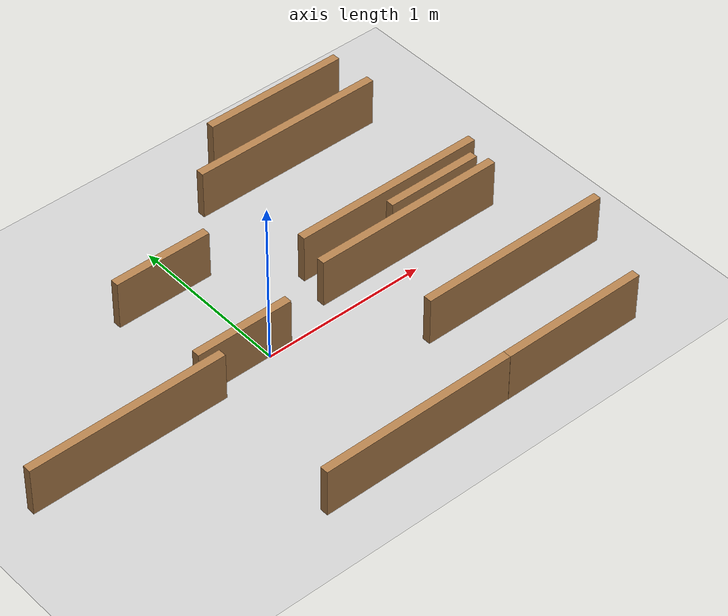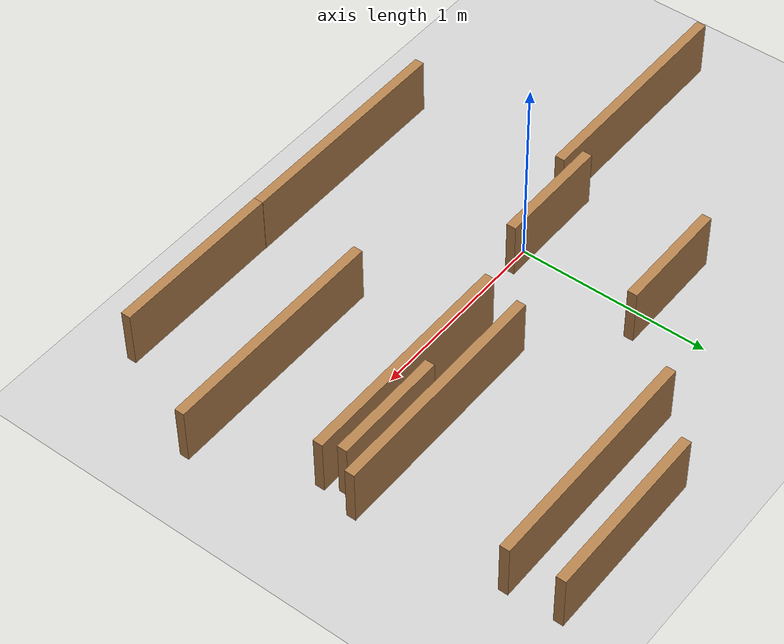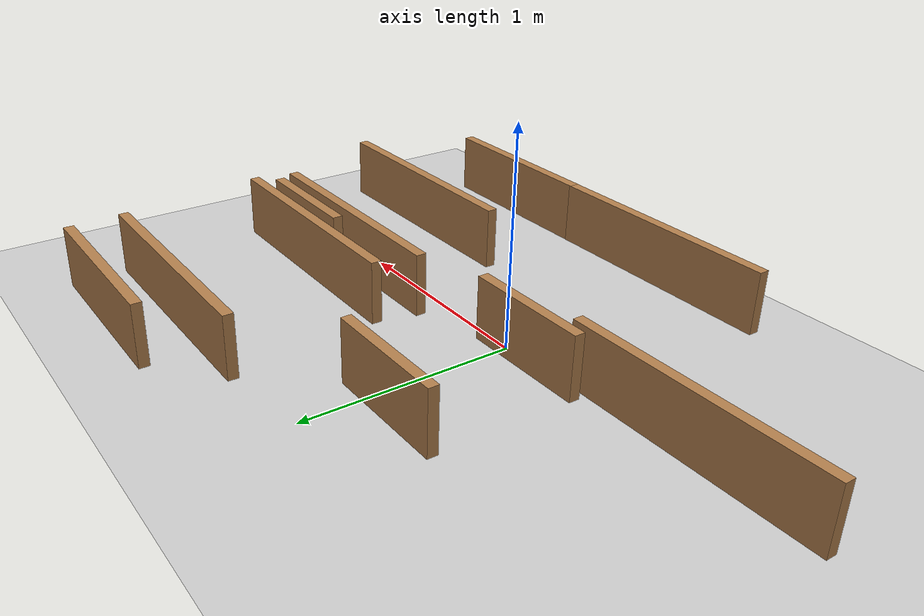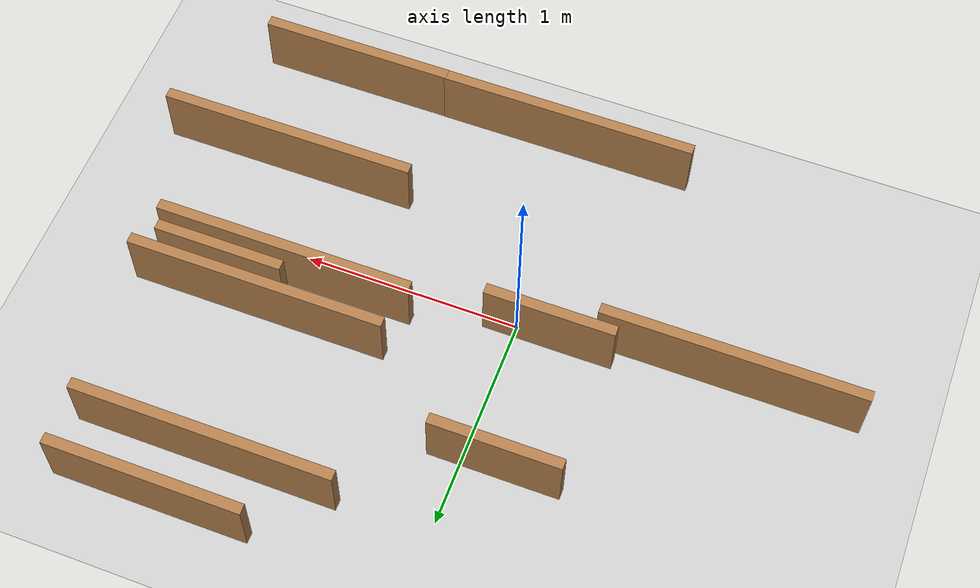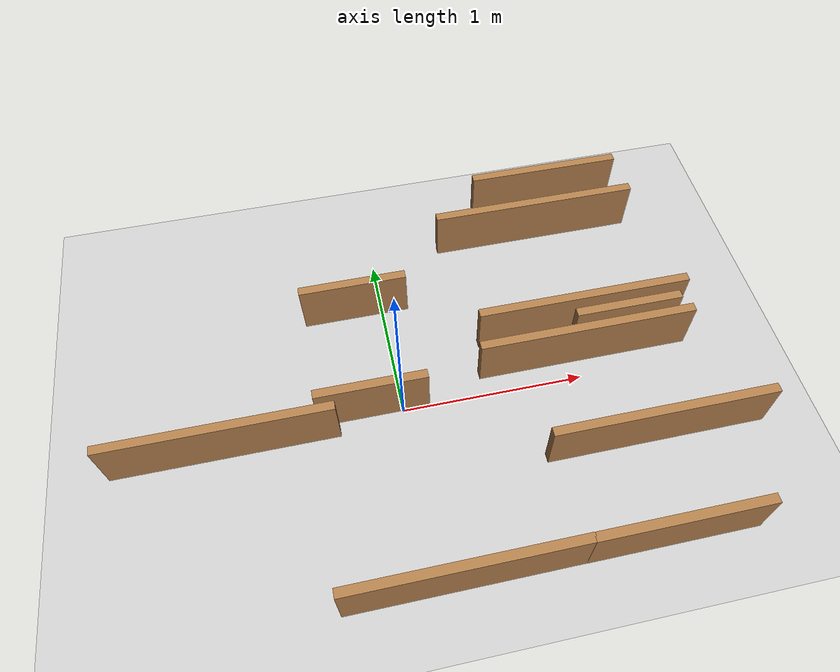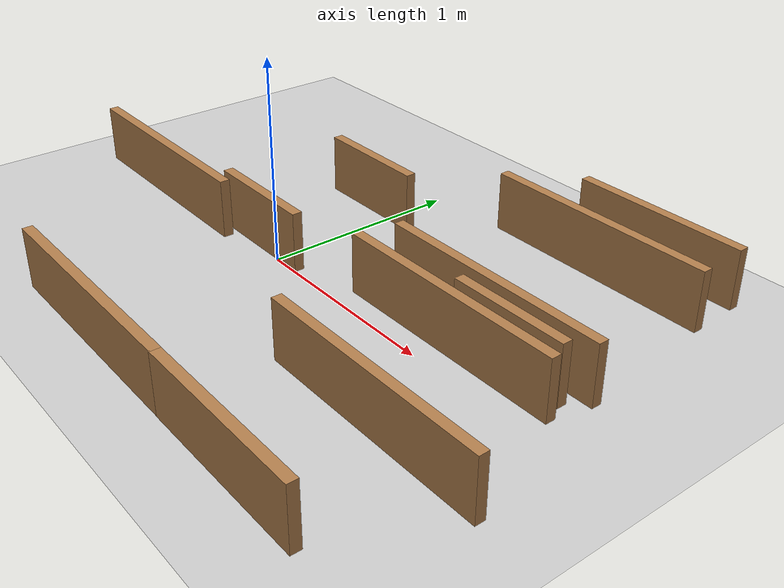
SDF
<sdf version="1.7">
 <world name="default">
  <light name="sun" type="directional">
   <pose>0 0 10 0 -0 0</pose>
   <diffuse>0.8 0.8 0.8 1</diffuse>
   <specular>0.2 0.2 0.2 1</specular>
   <attenuation>
    <range>1000</range>
    <constant>0.9</constant>
    <linear>0.01</linear>
    <quadratic>0.001</quadratic>
   </attenuation>
   <direction>-0.5 0.1 -0.9</direction>
   <spot><inner_angle>0</inner_angle><outer_angle>0</outer_angle><falloff>0</falloff></spot>
  </light>
  <model name="ground_plane">
   <static>1</static>
   <link name="link">
    <collision name="collision">
     <geometry><plane><normal>0 0 1</normal><size>100 100</size></plane></geometry>
     <surface>
      <contact><collide_bitmask>65535</collide_bitmask></contact>
      <friction><ode><mu>100</mu><mu2>50</mu2></ode></friction>
     </surface>
    </collision>
    <visual name="visual">
     <cast_shadows>0</cast_shadows>
     <geometry><plane><normal>0 0 1</normal><size>100 100</size></plane></geometry>
     <material>
      <script><uri>file://media/materials/scripts/gazebo.material</uri><name>Gazebo/Grey</name></script>
     </material>
    </visual>
   </link>
  </model>
  <gravity>0 0 -9.8</gravity>
  <magnetic_field>6e-06 2.3e-05 -4.2e-05</magnetic_field>
  <atmosphere type="adiabatic"/>
  <physics type="ode">
   <max_step_size>0.001</max_step_size>
   <real_time_factor>1</real_time_factor>
   <real_time_update_rate>1000</real_time_update_rate>
  </physics>
  <scene><ambient>0.4 0.4 0.4 1</ambient><background>0.7 0.7 0.7 1</background><shadows>1</shadows></scene>
  <spherical_coordinates>
   <surface_model>EARTH_WGS84</surface_model>
   <latitude_deg>0</latitude_deg>
   <longitude_deg>0</longitude_deg>
   <elevation>0</elevation>
   <heading_deg>0</heading_deg>
  </spherical_coordinates>
  <model name="wall120cm">
   <pose>0.115598 -0.9874 0 0 -0 0</pose>
   <link name="Wall_11">
    <collision name="Wall_11_Collision">
     <geometry><box><size>1.2 0.05 0.3</size></box></geometry>
     <pose>0 0 0.15 0 -0 0</pose>
    </collision>
    <visual name="Wall_11_Visual">
     <pose>0 0 0.15 0 -0 0</pose>
     <geometry><box><size>1.2 0.05 0.3</size></box></geometry>
     <material>
      <script><uri>file://media/materials/scripts/gazebo.material</uri><name>Gazebo/Wood</name></script>
      <ambient>1 1 1 1</ambient>
     </material>
     <meta><layer>0</layer></meta>
    </visual>
   </link>
   <static>1</static>
  </model>
  <model name="wall120cm_0">
   <pose>-0.949451 -0.057987 0 0 -0 0</pose>
   <link name="Wall_11">
    <collision name="Wall_11_Collision">
     <geometry><box><size>1.2 0.05 0.3</size></box></geometry>
     <pose>0 0 0.15 0 -0 0</pose>
    </collision>
    <visual name="Wall_11_Visual">
     <pose>0 0 0.15 0 -0 0</pose>
     <geometry><box><size>1.2 0.05 0.3</size></box></geometry>
     <material>
      <script><uri>file://media/materials/scripts/gazebo.material</uri><name>Gazebo/Wood</name></script>
      <ambient>1 1 1 1</ambient>
     </material>
     <meta><layer>0</layer></meta>
    </visual>
   </link>
   <static>1</static>
  </model>
  <model name="wall120cm_1">
   <pose>1.05018 0.131852 0 0 -0 0</pose>
   <link name="Wall_11">
    <collision name="Wall_11_Collision">
     <geometry><box><size>1.2 0.05 0.3</size></box></geometry>
     <pose>0 0 0.15 0 -0 0</pose>
    </collision>
    <visual name="Wall_11_Visual">
     <pose>0 0 0.15 0 -0 0</pose>
     <geometry><box><size>1.2 0.05 0.3</size></box></geometry>
     <material>
      <script><uri>file://media/materials/scripts/gazebo.material</uri><name>Gazebo/Wood</name></script>
      <ambient>1 1 1 1</ambient>
     </material>
     <meta><layer>0</layer></meta>
    </visual>
   </link>
   <static>1</static>
  </model>
  <model name="wall120cm_2">
   <pose>1.01114 1.07013 0 0 -0 0</pose>
   <link name="Wall_11">
    <collision name="Wall_11_Collision">
     <geometry><box><size>1.2 0.05 0.3</size></box></geometry>
     <pose>0 0 0.15 0 -0 0</pose>
    </collision>
    <visual name="Wall_11_Visual">
     <pose>0 0 0.15 0 -0 0</pose>
     <geometry><box><size>1.2 0.05 0.3</size></box></geometry>
     <material>
      <script><uri>file://media/materials/scripts/gazebo.material</uri><name>Gazebo/Wood</name></script>
      <ambient>1 1 1 1</ambient>
     </material>
     <meta><layer>0</layer></meta>
    </visual>
   </link>
   <static>1</static>
  </model>
  <model name="wall120cm_3">
   <pose>1.09391 0.33722 0 0 -0 0</pose>
   <link name="Wall_11">
    <collision name="Wall_11_Collision">
     <geometry><box><size>1.2 0.05 0.3</size></box></geometry>
     <pose>0 0 0.15 0 -0 0</pose>
    </collision>
    <visual name="Wall_11_Visual">
     <pose>0 0 0.15 0 -0 0</pose>
     <geometry><box><size>1.2 0.05 0.3</size></box></geometry>
     <material>
      <script><uri>file://media/materials/scripts/gazebo.material</uri><name>Gazebo/Wood</name></script>
      <ambient>1 1 1 1</ambient>
     </material>
     <meta><layer>0</layer></meta>
    </visual>
   </link>
   <static>1</static>
  </model>
  <model name="wall120cm_4">
   <pose>1.27623 -0.436311 0 0 -0 0</pose>
   <link name="Wall_11">
    <collision name="Wall_11_Collision">
     <geometry><box><size>1.2 0.05 0.3</size></box></geometry>
     <pose>0 0 0.15 0 -0 0</pose>
    </collision>
    <visual name="Wall_11_Visual">
     <pose>0 0 0.15 0 -0 0</pose>
     <geometry><box><size>1.2 0.05 0.3</size></box></geometry>
     <material>
      <script><uri>file://media/materials/scripts/gazebo.material</uri><name>Gazebo/Wood</name></script>
      <ambient>1 1 1 1</ambient>
     </material>
     <meta><layer>0</layer></meta>
    </visual>
   </link>
   <static>1</static>
  </model>
  <model name="wall90cm">
   <pose>1.15868 -0.98846 0 0 -0 0</pose>
   <link name="Wall_6">
    <collision name="Wall_6_Collision">
     <geometry><box><size>0.9 0.05 0.3</size></box></geometry>
     <pose>0 0 0.15 0 -0 0</pose>
    </collision>
    <visual name="Wall_6_Visual">
     <pose>0 0 0.15 0 -0 0</pose>
     <geometry><box><size>0.9 0.05 0.3</size></box></geometry>
     <material>
      <script><uri>file://media/materials/scripts/gazebo.material</uri><name>Gazebo/Wood</name></script>
      <ambient>1 1 1 1</ambient>
     </material>
     <meta><layer>0</layer></meta>
    </visual>
   </link>
   <static>1</static>
  </model>
  <model name="wall90cm_0">
   <pose>1.14675 1.33745 0 0 -0 0</pose>
   <link name="Wall_6">
    <collision name="Wall_6_Collision">
     <geometry><box><size>0.9 0.05 0.3</size></box></geometry>
     <pose>0 0 0.15 0 -0 0</pose>
    </collision>
    <visual name="Wall_6_Visual">
     <pose>0 0 0.15 0 -0 0</pose>
     <geometry><box><size>0.9 0.05 0.3</size></box></geometry>
     <material>
      <script><uri>file://media/materials/scripts/gazebo.material</uri><name>Gazebo/Wood</name></script>
      <ambient>1 1 1 1</ambient>
     </material>
     <meta><layer>0</layer></meta>
    </visual>
   </link>
   <static>1</static>
  </model>
  <model name="wall60cm">
   <pose>-0.154779 0.025154 0 0 -0 0</pose>
   <link name="Wall_4">
    <collision name="Wall_4_Collision">
     <geometry><box><size>0.6 0.05 0.3</size></box></geometry>
     <pose>0 0 0.15 0 -0 0</pose>
    </collision>
    <visual name="Wall_4_Visual">
     <pose>0 0 0.15 0 -0 0</pose>
     <geometry><box><size>0.6 0.05 0.3</size></box></geometry>
     <material>
      <script><uri>file://media/materials/scripts/gazebo.material</uri><name>Gazebo/Wood</name></script>
      <ambient>1 1 1 1</ambient>
     </material>
     <meta><layer>0</layer></meta>
    </visual>
   </link>
   <static>1</static>
  </model>
  <model name="wall60cm_0">
   <pose>-0.149176 0.691099 0 0 -0 0</pose>
   <link name="Wall_4">
    <collision name="Wall_4_Collision">
     <geometry><box><size>0.6 0.05 0.3</size></box></geometry>
     <pose>0 0 0.15 0 -0 0</pose>
    </collision>
    <visual name="Wall_4_Visual">
     <pose>0 0 0.15 0 -0 0</pose>
     <geometry><box><size>0.6 0.05 0.3</size></box></geometry>
     <material>
      <script><uri>file://media/materials/scripts/gazebo.material</uri><name>Gazebo/Wood</name></script>
      <ambient>1 1 1 1</ambient>
     </material>
     <meta><layer>0</layer></meta>
    </visual>
   </link>
   <static>1</static>
  </model>
  <model name="wall60cm_1">
   <pose>1.31186 0.231331 0 0 -0 0</pose>
   <link name="Wall_4">
    <collision name="Wall_4_Collision">
     <geometry><box><size>0.6 0.05 0.3</size></box></geometry>
     <pose>0 0 0.15 0 -0 0</pose>
    </collision>
    <visual name="Wall_4_Visual">
     <pose>0 0 0.15 0 -0 0</pose>
     <geometry><box><size>0.6 0.05 0.3</size></box></geometry>
     <material>
      <script><uri>file://media/materials/scripts/gazebo.material</uri><name>Gazebo/Wood</name></script>
      <ambient>1 1 1 1</ambient>
     </material>
     <meta><layer>0</layer></meta>
    </visual>
   </link>
   <static>1</static>
  </model>
 </world>
</sdf>
